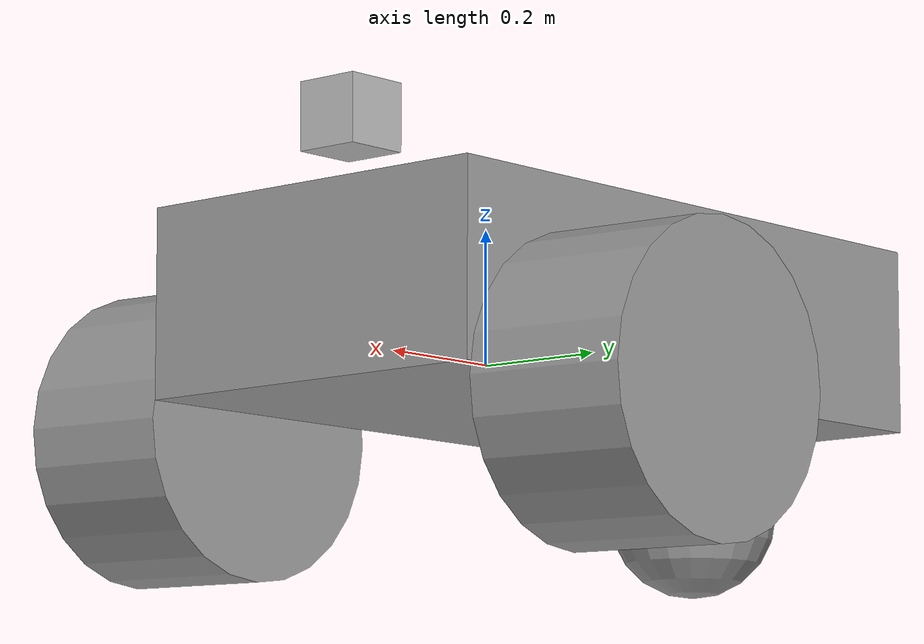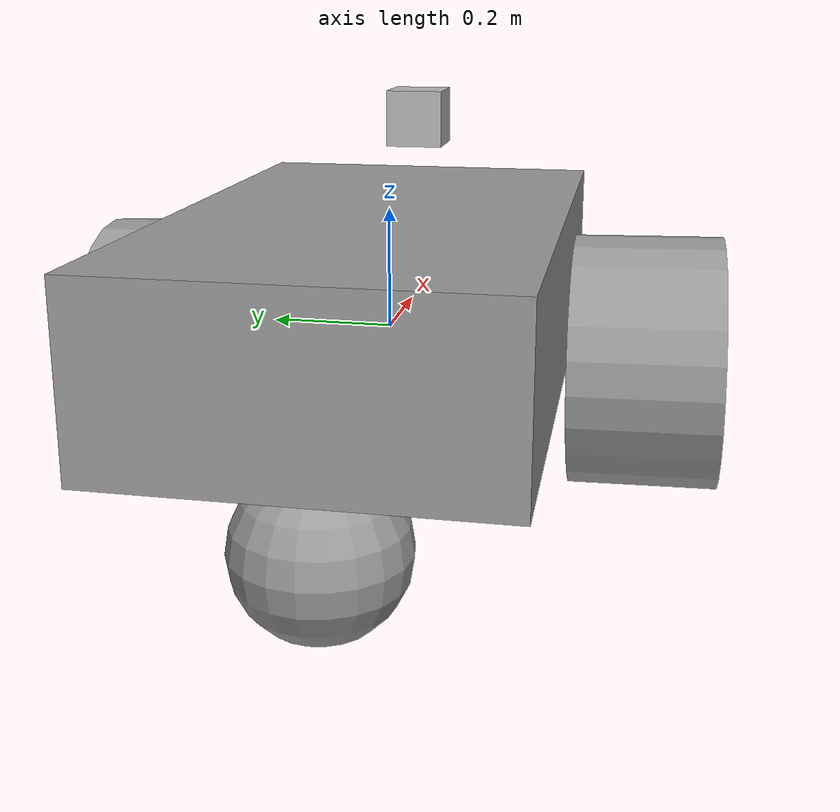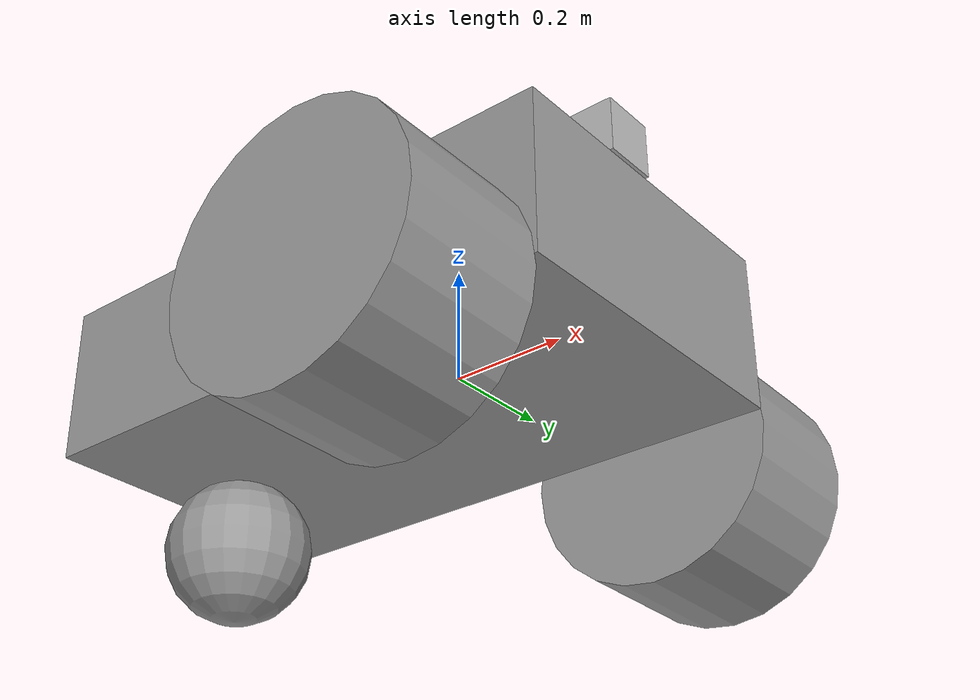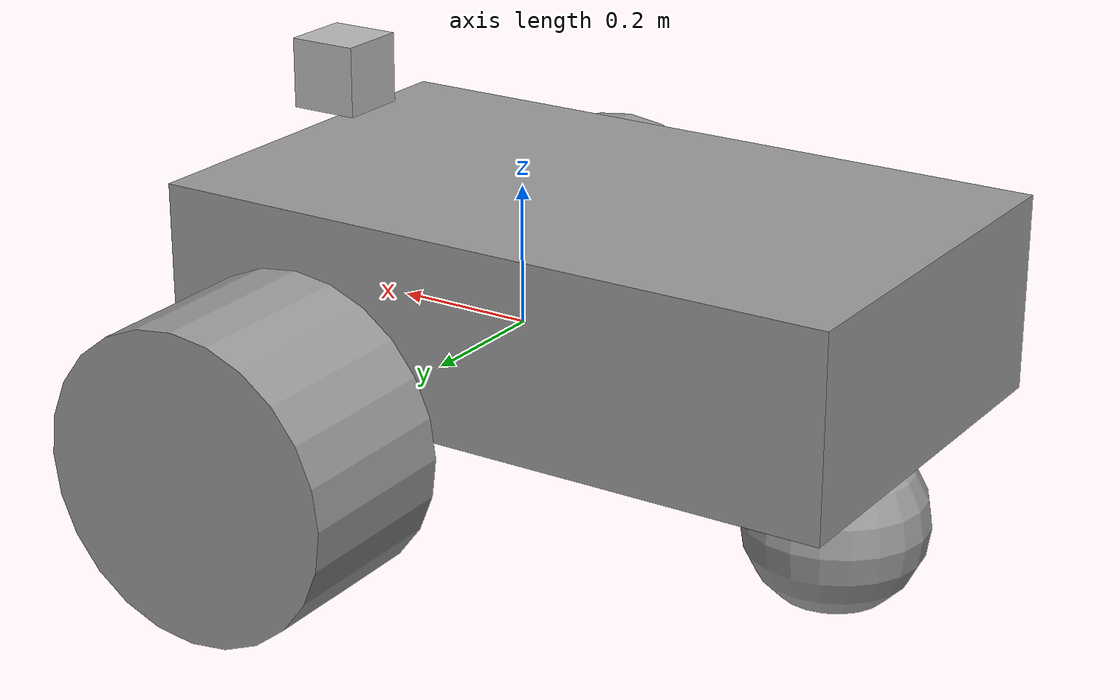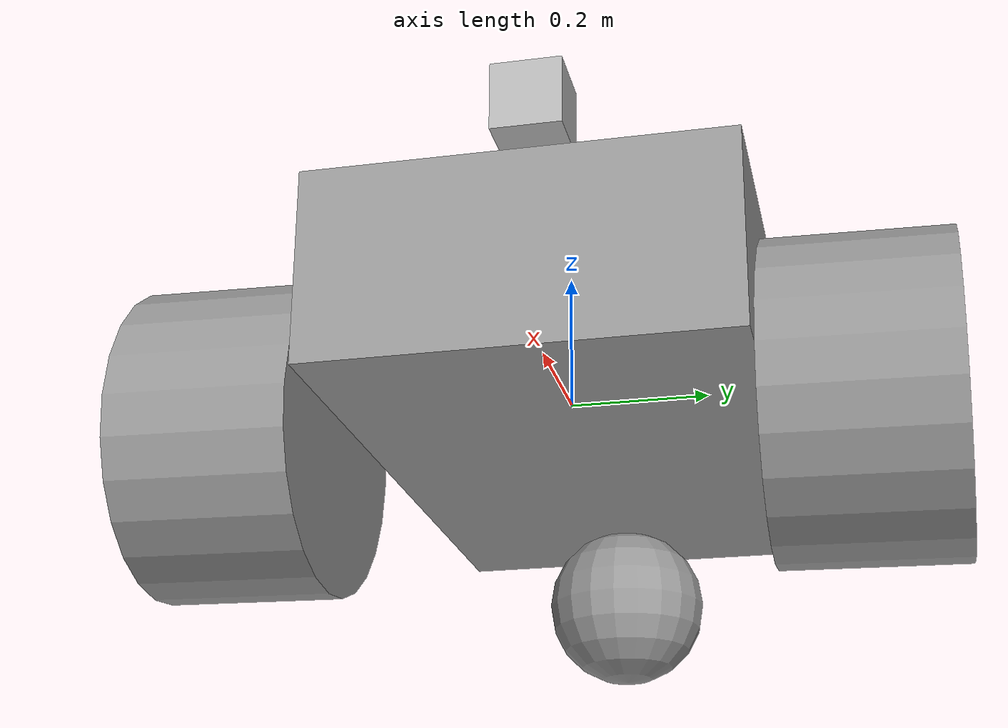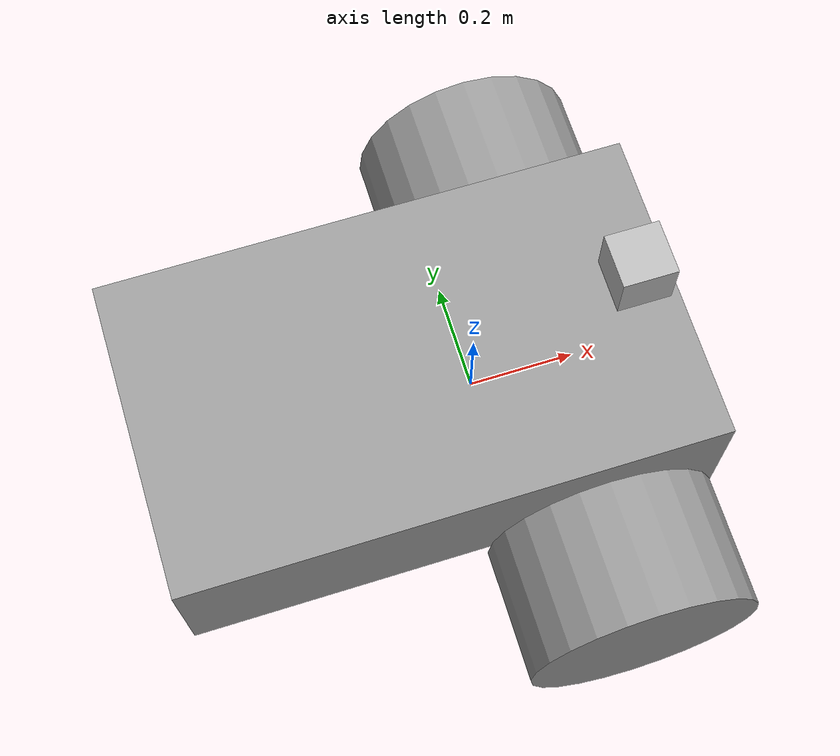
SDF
<?xml version='1.0'?>
<sdf version='1.6'>
  <model name='follower'>
    <link name='link_0'>
      <inertial>
        <mass>0.165058</mass>
        <inertia>
          <ixx>0.00589341</ixx>
          <ixy>0</ixy>
          <ixz>0</ixz>
          <iyy>0.0148231</iyy>
          <iyz>0</iyz>
          <izz>0.01858</izz>
        </inertia>
        <pose frame=''>0 0 0 0 -0 0</pose>
      </inertial>
      <pose frame=''>-0.121242 -0.000135 0.077307 0 -0 0</pose>
      <gravity>1</gravity>
      <self_collide>0</self_collide>
      <kinematic>0</kinematic>
      <enable_wind>0</enable_wind>
      <visual name='visual'>
        <pose frame=''>0 0 0 0 -0 0</pose>
        <geometry>
          <box>
            <size>1 0.592281 0.278682</size>
          </box>
        </geometry>
        <material>
          <lighting>1</lighting>
          <script>
            <uri>file://media/materials/scripts/gazebo.material</uri>
            <name>Gazebo/Grey</name>
          </script>
          <shader type='pixel'>
            <normal_map>__default__</normal_map>
          </shader>
          <ambient>0.3 0.3 0.3 1</ambient>
          <diffuse>0.7 0.7 0.7 1</diffuse>
          <specular>0.01 0.01 0.01 1</specular>
          <emissive>0 0 0 1</emissive>
        </material>
        <transparency>0</transparency>
        <cast_shadows>1</cast_shadows>
      </visual>
      <collision name='collision'>
        <laser_retro>0</laser_retro>
        <max_contacts>10</max_contacts>
        <pose frame=''>0 0 0 0 -0 0</pose>
        <geometry>
          <box>
            <size>1 0.592281 0.278682</size>
          </box>
        </geometry>
        <surface>
          <friction>
            <ode>
              <mu>1</mu>
              <mu2>1</mu2>
              <fdir1>0 0 0</fdir1>
              <slip1>0</slip1>
              <slip2>0</slip2>
            </ode>
            <torsional>
              <coefficient>1</coefficient>
              <patch_radius>0</patch_radius>
              <surface_radius>0</surface_radius>
              <use_patch_radius>1</use_patch_radius>
              <ode>
                <slip>0</slip>
              </ode>
            </torsional>
          </friction>
          <bounce>
            <restitution_coefficient>0</restitution_coefficient>
            <threshold>1e+06</threshold>
          </bounce>
          <contact>
            <collide_without_contact>0</collide_without_contact>
            <collide_without_contact_bitmask>1</collide_without_contact_bitmask>
            <collide_bitmask>1</collide_bitmask>
            <ode>
              <soft_cfm>0</soft_cfm>
              <soft_erp>0.2</soft_erp>
              <kp>1e+13</kp>
              <kd>1</kd>
              <max_vel>0.01</max_vel>
              <min_depth>0</min_depth>
            </ode>
            <bullet>
              <split_impulse>1</split_impulse>
              <split_impulse_penetration_threshold>-0.01</split_impulse_penetration_threshold>
              <soft_cfm>0</soft_cfm>
              <soft_erp>0.2</soft_erp>
              <kp>1e+13</kp>
              <kd>1</kd>
            </bullet>
          </contact>
        </surface>
      </collision>
    </link>
    <link name='link_1'>
      <inertial>
        <mass>0.048626</mass>
        <inertia>
          <ixx>0.00084386</ixx>
          <ixy>0</ixy>
          <ixz>0</ixz>
          <iyy>0.00084386</iyy>
          <iyz>0</iyz>
          <izz>0.00117582</izz>
        </inertia>
        <pose frame=''>0 0 0 0 -0 0</pose>
      </inertial>
      <pose frame=''>0.158845 -0.425997 -0.08475 1.55224 -0 0</pose>
      <gravity>1</gravity>
      <self_collide>0</self_collide>
      <kinematic>0</kinematic>
      <enable_wind>0</enable_wind>
      <visual name='visual'>
        <pose frame=''>0 0 0 0 -0 0</pose>
        <geometry>
          <cylinder>
            <radius>0.219914</radius>
            <length>0.251324</length>
          </cylinder>
        </geometry>
        <material>
          <lighting>1</lighting>
          <script>
            <uri>file://media/materials/scripts/gazebo.material</uri>
            <name>Gazebo/Grey</name>
          </script>
          <shader type='pixel'>
            <normal_map>__default__</normal_map>
          </shader>
          <ambient>0.3 0.3 0.3 1</ambient>
          <diffuse>0.7 0.7 0.7 1</diffuse>
          <specular>0.01 0.01 0.01 1</specular>
          <emissive>0 0 0 1</emissive>
        </material>
        <transparency>0</transparency>
        <cast_shadows>1</cast_shadows>
      </visual>
      <collision name='collision'>
        <laser_retro>0</laser_retro>
        <max_contacts>10</max_contacts>
        <pose frame=''>0 0 0 0 -0 0</pose>
        <geometry>
          <cylinder>
            <radius>0.219914</radius>
            <length>0.251324</length>
          </cylinder>
        </geometry>
        <surface>
          <friction>
            <ode>
              <mu>1</mu>
              <mu2>1</mu2>
              <fdir1>0 0 0</fdir1>
              <slip1>0</slip1>
              <slip2>0</slip2>
            </ode>
            <torsional>
              <coefficient>1</coefficient>
              <patch_radius>0</patch_radius>
              <surface_radius>0</surface_radius>
              <use_patch_radius>1</use_patch_radius>
              <ode>
                <slip>0</slip>
              </ode>
            </torsional>
          </friction>
          <bounce>
            <restitution_coefficient>0</restitution_coefficient>
            <threshold>1e+06</threshold>
          </bounce>
          <contact>
            <collide_without_contact>0</collide_without_contact>
            <collide_without_contact_bitmask>1</collide_without_contact_bitmask>
            <collide_bitmask>1</collide_bitmask>
            <ode>
              <soft_cfm>0</soft_cfm>
              <soft_erp>0.2</soft_erp>
              <kp>1e+13</kp>
              <kd>1</kd>
              <max_vel>0.01</max_vel>
              <min_depth>0</min_depth>
            </ode>
            <bullet>
              <split_impulse>1</split_impulse>
              <split_impulse_penetration_threshold>-0.01</split_impulse_penetration_threshold>
              <soft_cfm>0</soft_cfm>
              <soft_erp>0.2</soft_erp>
              <kp>1e+13</kp>
              <kd>1</kd>
            </bullet>
          </contact>
        </surface>
      </collision>
    </link>
    <link name='link_1_clone'>
      <inertial>
        <mass>0.048626</mass>
        <inertia>
          <ixx>0.00084386</ixx>
          <ixy>0</ixy>
          <ixz>0</ixz>
          <iyy>0.00084386</iyy>
          <iyz>0</iyz>
          <izz>0.00117582</izz>
        </inertia>
        <pose frame=''>0 0 0 0 -0 0</pose>
      </inertial>
      <pose frame=''>0.158844 0.425726 -0.08475 1.55224 -0 0</pose>
      <gravity>1</gravity>
      <self_collide>0</self_collide>
      <kinematic>0</kinematic>
      <enable_wind>0</enable_wind>
      <visual name='visual'>
        <pose frame=''>0 0 0 0 -0 0</pose>
        <geometry>
          <cylinder>
            <radius>0.219914</radius>
            <length>0.251324</length>
          </cylinder>
        </geometry>
        <material>
          <lighting>1</lighting>
          <script>
            <uri>file://media/materials/scripts/gazebo.material</uri>
            <name>Gazebo/Grey</name>
          </script>
          <shader type='pixel'>
            <normal_map>__default__</normal_map>
          </shader>
          <ambient>0.3 0.3 0.3 1</ambient>
          <diffuse>0.7 0.7 0.7 1</diffuse>
          <specular>0.01 0.01 0.01 1</specular>
          <emissive>0 0 0 1</emissive>
        </material>
        <transparency>0</transparency>
        <cast_shadows>1</cast_shadows>
      </visual>
      <collision name='collision'>
        <laser_retro>0</laser_retro>
        <max_contacts>10</max_contacts>
        <pose frame=''>0 0 0 0 -0 0</pose>
        <geometry>
          <cylinder>
            <radius>0.219914</radius>
            <length>0.251324</length>
          </cylinder>
        </geometry>
        <surface>
          <friction>
            <ode>
              <mu>1</mu>
              <mu2>1</mu2>
              <fdir1>0 0 0</fdir1>
              <slip1>0</slip1>
              <slip2>0</slip2>
            </ode>
            <torsional>
              <coefficient>1</coefficient>
              <patch_radius>0</patch_radius>
              <surface_radius>0</surface_radius>
              <use_patch_radius>1</use_patch_radius>
              <ode>
                <slip>0</slip>
              </ode>
            </torsional>
          </friction>
          <bounce>
            <restitution_coefficient>0</restitution_coefficient>
            <threshold>1e+06</threshold>
          </bounce>
          <contact>
            <collide_without_contact>0</collide_without_contact>
            <collide_without_contact_bitmask>1</collide_without_contact_bitmask>
            <collide_bitmask>1</collide_bitmask>
            <ode>
              <soft_cfm>0</soft_cfm>
              <soft_erp>0.2</soft_erp>
              <kp>1e+13</kp>
              <kd>1</kd>
              <max_vel>0.01</max_vel>
              <min_depth>0</min_depth>
            </ode>
            <bullet>
              <split_impulse>1</split_impulse>
              <split_impulse_penetration_threshold>-0.01</split_impulse_penetration_threshold>
              <soft_cfm>0</soft_cfm>
              <soft_erp>0.2</soft_erp>
              <kp>1e+13</kp>
              <kd>1</kd>
            </bullet>
          </contact>
        </surface>
      </collision>
    </link>
    <link name='link_2'>
      <inertial>
        <mass>0.016832</mass>
        <inertia>
          <ixx>0.000110557</ixx>
          <ixy>0</ixy>
          <ixz>0</ixz>
          <iyy>0.000110557</iyy>
          <iyz>0</iyz>
          <izz>0.000110557</izz>
        </inertia>
        <pose frame=''>0 0 0 0 -0 0</pose>
      </inertial>
      <pose frame=''>-0.493099 -0.006064 -0.177666 0 -0 0</pose>
      <self_collide>0</self_collide>
      <enable_wind>0</enable_wind>
      <kinematic>0</kinematic>
      <visual name='visual'>
        <pose frame=''>0 0 0 0 -0 0</pose>
        <geometry>
          <sphere>
            <radius>0.128143</radius>
          </sphere>
        </geometry>
        <material>
          <lighting>1</lighting>
          <script>
            <uri>file://media/materials/scripts/gazebo.material</uri>
            <name>Gazebo/Grey</name>
          </script>
          <shader type='pixel'/>
          <emissive>0 0 0 1</emissive>
        </material>
        <transparency>0</transparency>
        <cast_shadows>1</cast_shadows>
      </visual>
      <collision name='collision'>
        <laser_retro>0</laser_retro>
        <max_contacts>10</max_contacts>
        <pose frame=''>0 0 0 0 -0 0</pose>
        <geometry>
          <sphere>
            <radius>0.128143</radius>
          </sphere>
        </geometry>
        <surface>
          <friction>
            <ode>
              <mu>1</mu>
              <mu2>1</mu2>
              <fdir1>0 0 0</fdir1>
              <slip1>0</slip1>
              <slip2>0</slip2>
            </ode>
            <torsional>
              <coefficient>1</coefficient>
              <patch_radius>0</patch_radius>
              <surface_radius>0</surface_radius>
              <use_patch_radius>1</use_patch_radius>
              <ode>
                <slip>0</slip>
              </ode>
            </torsional>
          </friction>
          <bounce>
            <restitution_coefficient>0</restitution_coefficient>
            <threshold>1e+06</threshold>
          </bounce>
          <contact>
            <collide_without_contact>0</collide_without_contact>
            <collide_without_contact_bitmask>1</collide_without_contact_bitmask>
            <collide_bitmask>1</collide_bitmask>
            <ode>
              <soft_cfm>0</soft_cfm>
              <soft_erp>0.2</soft_erp>
              <kp>1e+13</kp>
              <kd>1</kd>
              <max_vel>0.01</max_vel>
              <min_depth>0</min_depth>
            </ode>
            <bullet>
              <split_impulse>1</split_impulse>
              <split_impulse_penetration_threshold>-0.01</split_impulse_penetration_threshold>
              <soft_cfm>0</soft_cfm>
              <soft_erp>0.2</soft_erp>
              <kp>1e+13</kp>
              <kd>1</kd>
            </bullet>
          </contact>
        </surface>
      </collision>
    </link>
    <model name='depth_camera'>
      <link name='link'>
        <pose frame=''>0 0 0.05 0 -0 0</pose>
        <inertial>
          <mass>0.1</mass>
          <inertia>
            <ixx>0.000166667</ixx>
            <iyy>0.000166667</iyy>
            <izz>0.000166667</izz>
            <ixy>0</ixy>
            <ixz>0</ixz>
            <iyz>0</iyz>
          </inertia>
          <pose frame=''>0 0 0 0 -0 0</pose>
        </inertial>
        <collision name='collision'>
          <geometry>
            <box>
              <size>0.1 0.1 0.1</size>
            </box>
          </geometry>
          <max_contacts>10</max_contacts>
          <surface>
            <contact>
              <ode/>
            </contact>
            <bounce/>
            <friction>
              <torsional>
                <ode/>
              </torsional>
              <ode/>
            </friction>
          </surface>
        </collision>
        <visual name='visual'>
          <geometry>
            <box>
              <size>0.1 0.1 0.1</size>
            </box>
          </geometry>
        </visual>
        <sensor name='camera' type='depth'>
          <camera name='__default__'>
            <horizontal_fov>1.047</horizontal_fov>
            <image>
              <width>128</width>
              <height>128</height>
            </image>
            <clip>
              <near>0.1</near>
              <far>100</far>
            </clip>
          </camera>
          <always_on>1</always_on>
          <update_rate>30</update_rate>
          <visualize>1</visualize>
        </sensor>
        <self_collide>0</self_collide>
        <enable_wind>0</enable_wind>
        <kinematic>0</kinematic>
      </link>
      <pose frame=''>0.296651 0.006469 0.26986 0 -0 0</pose>
    </model>
    <joint name='link_0_JOINT_0' type='revolute'>
      <parent>link_0</parent>
      <child>link_1_clone</child>
      <pose frame=''>0 0 0 0 -0 0</pose>
      <axis>
        <xyz>0 0 1</xyz>
        <use_parent_model_frame>0</use_parent_model_frame>
        <limit>
          <lower>-1.79769e+308</lower>
          <upper>1.79769e+308</upper>
          <effort>-1</effort>
          <velocity>-1</velocity>
        </limit>
        <dynamics>
          <spring_reference>0</spring_reference>
          <spring_stiffness>0</spring_stiffness>
          <damping>0</damping>
          <friction>0</friction>
        </dynamics>
      </axis>
      <physics>
        <ode>
          <limit>
            <cfm>0</cfm>
            <erp>0.2</erp>
          </limit>
          <suspension>
            <cfm>0</cfm>
            <erp>0.2</erp>
          </suspension>
        </ode>
      </physics>
    </joint>
    <joint name='link_0_JOINT_1' type='revolute'>
      <parent>link_0</parent>
      <child>link_1</child>
      <pose frame=''>0 0 0 0 -0 0</pose>
      <axis>
        <xyz>0 0 1</xyz>
        <use_parent_model_frame>0</use_parent_model_frame>
        <limit>
          <lower>-1.79769e+308</lower>
          <upper>1.79769e+308</upper>
          <effort>-1</effort>
          <velocity>-1</velocity>
        </limit>
        <dynamics>
          <spring_reference>0</spring_reference>
          <spring_stiffness>0</spring_stiffness>
          <damping>0</damping>
          <friction>0</friction>
        </dynamics>
      </axis>
      <physics>
        <ode>
          <limit>
            <cfm>0</cfm>
            <erp>0.2</erp>
          </limit>
          <suspension>
            <cfm>0</cfm>
            <erp>0.2</erp>
          </suspension>
        </ode>
      </physics>
    </joint>
    <joint name='link_0_JOINT_2' type='ball'>
      <parent>link_0</parent>
      <child>link_2</child>
      <pose frame=''>0 0 0 0 -0 0</pose>
      <physics>
        <ode>
          <limit>
            <cfm>0</cfm>
            <erp>0.2</erp>
          </limit>
          <suspension>
            <cfm>0</cfm>
            <erp>0.2</erp>
          </suspension>
        </ode>
      </physics>
    </joint>
    <joint name='link_JOINT_3' type='fixed'>
      <parent>link_0</parent>
      <child>depth_camera::link</child>
      <pose frame=''>0 0 0 0 -0 0</pose>
      <physics>
        <ode>
          <limit>
            <cfm>0</cfm>
            <erp>0.2</erp>
          </limit>
          <suspension>
            <cfm>0</cfm>
            <erp>0.2</erp>
          </suspension>
        </ode>
      </physics>
    </joint>
    <static>0</static>
    <allow_auto_disable>1</allow_auto_disable>
    <plugin name='actuator' filename='/Users/kirk/code/exo-follower/mod/actuator/build/libactuator.dylib'/>
    <plugin name='collector' filename='/Users/kirk/code/exo-follower/mod/collector/build/libcollector.dylib'/>
  </model>
</sdf>
